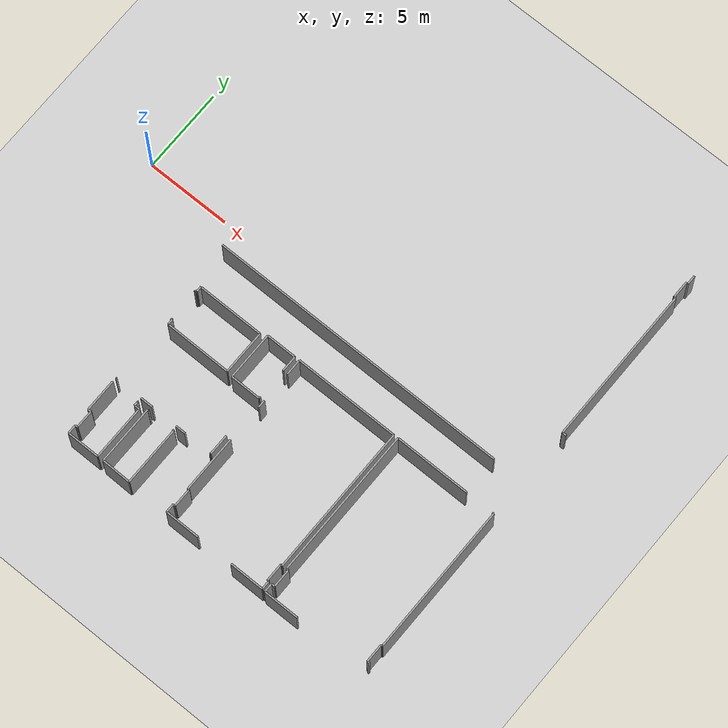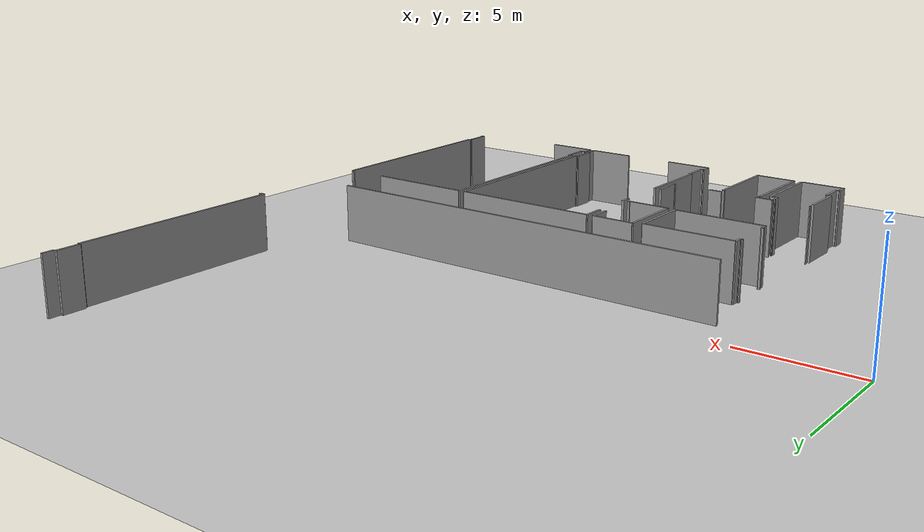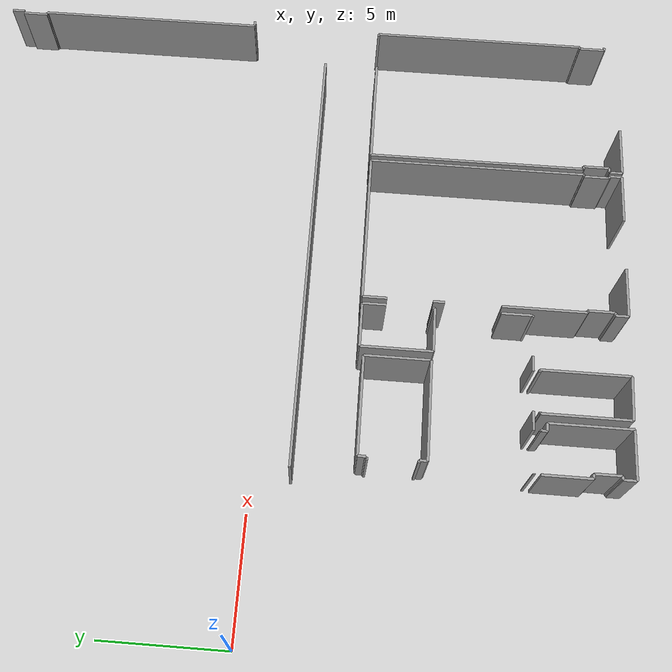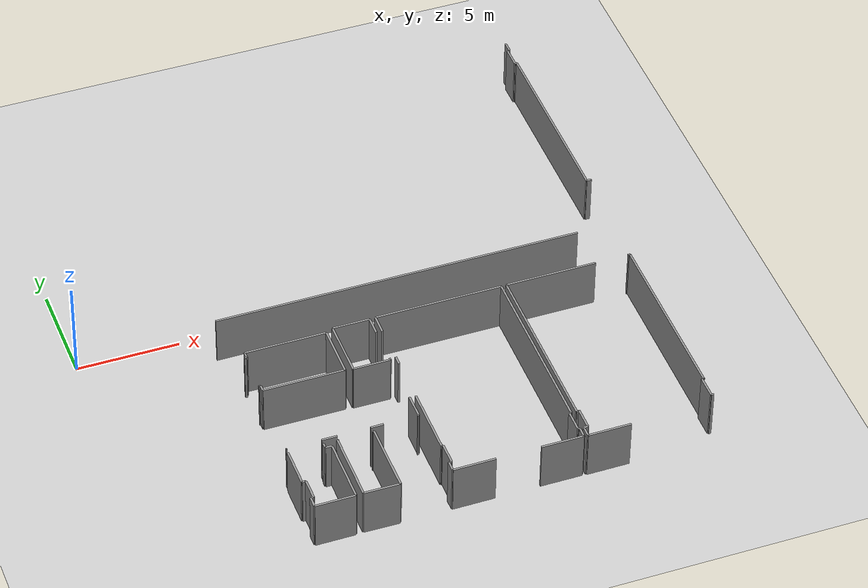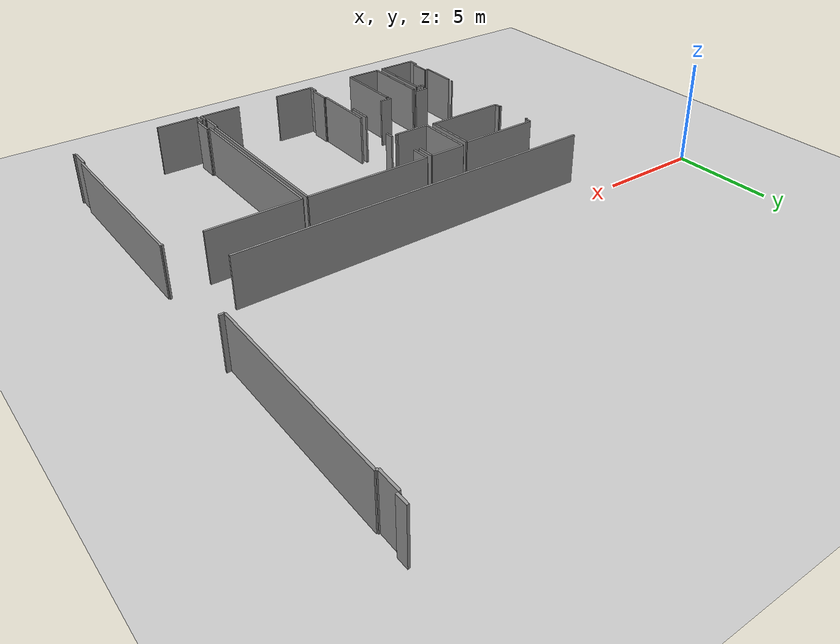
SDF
<sdf version="1.6">
 <world name="default">
  <model name="ground_plane">
   <static>1</static>
   <link name="link">
    <collision name="collision">
     <geometry><plane><normal>0 0 1</normal><size>100 100</size></plane></geometry>
     <surface><friction><ode><mu>100</mu><mu2>50</mu2></ode></friction></surface>
    </collision>
    <visual name="visual">
     <cast_shadows>0</cast_shadows>
     <geometry><plane><normal>0 0 1</normal><size>100 100</size></plane></geometry>
     <material>
      <script><uri>file://media/materials/scripts/gazebo.material</uri><name>Gazebo/Grey</name></script>
     </material>
    </visual>
   </link>
  </model>
  <model name="0510040946_A-40">
   <static>1</static>
   <link name="Wall_151">
    <collision name="Wall_151_Collision">
     <geometry><box><size>0.525818500035 0.1 2.5</size></box></geometry>
     <pose>0.262909250017 0 1.25 0 0 0</pose>
    </collision>
    <visual name="Wall_151_Visual">
     <pose>0.262909250017 0 1.25 0 0 0</pose>
     <geometry><box><size>0.525818500035 0.1 2.5</size></box></geometry>
     <material>
      <script><uri>file://media/materials/scripts/gazebo.material</uri><name>Gazebo/Grey</name></script>
      <ambient>1 1 1 1</ambient>
     </material>
    </visual>
    <pose>84.4169514956 -0.0164873142799 0 0 0 -1.57079632679</pose>
   </link>
   <link name="Wall_153">
    <collision name="Wall_153_Collision">
     <geometry><box><size>1.03058396799 0.1 2.5</size></box></geometry>
     <pose>0.515291983995 0 1.25 0 0 0</pose>
    </collision>
    <visual name="Wall_153_Visual">
     <pose>0.515291983995 0 1.25 0 0 0</pose>
     <geometry><box><size>1.03058396799 0.1 2.5</size></box></geometry>
     <material>
      <script><uri>file://media/materials/scripts/gazebo.material</uri><name>Gazebo/Grey</name></script>
      <ambient>1 1 1 1</ambient>
     </material>
    </visual>
    <pose>84.3085156978 -0.542305814315 0 0 0 -1.57079632679</pose>
   </link>
   <link name="Wall_154">
    <collision name="Wall_154_Collision">
     <geometry><box><size>0.0975288052404 0.1 2.5</size></box></geometry>
     <pose>0.0487644026202 0 1.25 0 0 0</pose>
    </collision>
    <visual name="Wall_154_Visual">
     <pose>0.0487644026202 0 1.25 0 0 0</pose>
     <geometry><box><size>0.0975288052404 0.1 2.5</size></box></geometry>
     <material>
      <script><uri>file://media/materials/scripts/gazebo.material</uri><name>Gazebo/Grey</name></script>
      <ambient>1 1 1 1</ambient>
     </material>
    </visual>
    <pose>84.3085156978 -1.5728897823 0 0 0 0.0</pose>
   </link>
   <link name="Wall_155">
    <collision name="Wall_155_Collision">
     <geometry><box><size>9.25128569345 0.1 2.5</size></box></geometry>
     <pose>4.62564284673 0 1.25 0 0 0</pose>
    </collision>
    <visual name="Wall_155_Visual">
     <pose>4.62564284673 0 1.25 0 0 0</pose>
     <geometry><box><size>9.25128569345 0.1 2.5</size></box></geometry>
     <material>
      <script><uri>file://media/materials/scripts/gazebo.material</uri><name>Gazebo/Grey</name></script>
      <ambient>1 1 1 1</ambient>
     </material>
    </visual>
    <pose>84.4060445031 -1.5728897823 0 0 0 -1.57079632679</pose>
   </link>
   <link name="Wall_156">
    <collision name="Wall_156_Collision">
     <geometry><box><size>0.236022245192 0.1 2.5</size></box></geometry>
     <pose>0.118011122596 0 1.25 0 0 0</pose>
    </collision>
    <visual name="Wall_156_Visual">
     <pose>0.118011122596 0 1.25 0 0 0</pose>
     <geometry><box><size>0.236022245192 0.1 2.5</size></box></geometry>
     <material>
      <script><uri>file://media/materials/scripts/gazebo.material</uri><name>Gazebo/Grey</name></script>
      <ambient>1 1 1 1</ambient>
     </material>
    </visual>
    <pose>84.4060445031 -10.8241754758 0 0 0 0.0</pose>
   </link>
   <link name="Wall_164">
    <collision name="Wall_164_Collision">
     <geometry><box><size>17.9492317546 0.1 2.5</size></box></geometry>
     <pose>8.97461587728 0 1.25 0 0 0</pose>
    </collision>
    <visual name="Wall_164_Visual">
     <pose>8.97461587728 0 1.25 0 0 0</pose>
     <geometry><box><size>17.9492317546 0.1 2.5</size></box></geometry>
     <material>
      <script><uri>file://media/materials/scripts/gazebo.material</uri><name>Gazebo/Grey</name></script>
      <ambient>1 1 1 1</ambient>
     </material>
    </visual>
    <pose>82.6194537626 -14.1014730781 0 0 0 3.14159265359</pose>
   </link>
   <link name="Wall_182">
    <collision name="Wall_182_Collision">
     <geometry><box><size>1.21727109584 0.1 2.5</size></box></geometry>
     <pose>0.608635547918 0 1.25 0 0 0</pose>
    </collision>
    <visual name="Wall_182_Visual">
     <pose>0.608635547918 0 1.25 0 0 0</pose>
     <geometry><box><size>1.21727109584 0.1 2.5</size></box></geometry>
     <material>
      <script><uri>file://media/materials/scripts/gazebo.material</uri><name>Gazebo/Grey</name></script>
      <ambient>1 1 1 1</ambient>
     </material>
    </visual>
    <pose>71.3946365498 -21.76211342 0 0 0 -1.57079632679</pose>
   </link>
   <link name="Wall_183">
    <collision name="Wall_183_Collision">
     <geometry><box><size>0.0604957608578 0.1 2.5</size></box></geometry>
     <pose>0.0302478804289 0 1.25 0 0 0</pose>
    </collision>
    <visual name="Wall_183_Visual">
     <pose>0.0302478804289 0 1.25 0 0 0</pose>
     <geometry><box><size>0.0604957608578 0.1 2.5</size></box></geometry>
     <material>
      <script><uri>file://media/materials/scripts/gazebo.material</uri><name>Gazebo/Grey</name></script>
      <ambient>1 1 1 1</ambient>
     </material>
    </visual>
    <pose>71.3946365498 -22.9793845159 0 0 0 3.14159265359</pose>
   </link>
   <link name="Wall_184">
    <collision name="Wall_184_Collision">
     <geometry><box><size>0.614215869674 0.1 2.5</size></box></geometry>
     <pose>0.307107934837 0 1.25 0 0 0</pose>
    </collision>
    <visual name="Wall_184_Visual">
     <pose>0.307107934837 0 1.25 0 0 0</pose>
     <geometry><box><size>0.614215869674 0.1 2.5</size></box></geometry>
     <material>
      <script><uri>file://media/materials/scripts/gazebo.material</uri><name>Gazebo/Grey</name></script>
      <ambient>1 1 1 1</ambient>
     </material>
    </visual>
    <pose>69.7057014401 -22.9793845159 0 0 0 3.14159265359</pose>
   </link>
   <link name="Wall_185">
    <collision name="Wall_185_Collision">
     <geometry><box><size>0.74687533688 0.1 2.5</size></box></geometry>
     <pose>0.37343766844 0 1.25 0 0 0</pose>
    </collision>
    <visual name="Wall_185_Visual">
     <pose>0.37343766844 0 1.25 0 0 0</pose>
     <geometry><box><size>0.74687533688 0.1 2.5</size></box></geometry>
     <material>
      <script><uri>file://media/materials/scripts/gazebo.material</uri><name>Gazebo/Grey</name></script>
      <ambient>1 1 1 1</ambient>
     </material>
    </visual>
    <pose>67.5094643525 -22.9793845159 0 0 0 3.14159265359</pose>
   </link>
   <link name="Wall_186">
    <collision name="Wall_186_Collision">
     <geometry><box><size>0.0435011446001 0.1 2.5</size></box></geometry>
     <pose>0.0217505723 0 1.25 0 0 0</pose>
    </collision>
    <visual name="Wall_186_Visual">
     <pose>0.0217505723 0 1.25 0 0 0</pose>
     <geometry><box><size>0.0435011446001 0.1 2.5</size></box></geometry>
     <material>
      <script><uri>file://media/materials/scripts/gazebo.material</uri><name>Gazebo/Grey</name></script>
      <ambient>1 1 1 1</ambient>
     </material>
    </visual>
    <pose>65.1309790294 -22.9793845159 0 0 0 3.14159265359</pose>
   </link>
   <link name="Wall_194">
    <collision name="Wall_194_Collision">
     <geometry><box><size>0.308439602529 0.1 2.5</size></box></geometry>
     <pose>0.154219801264 0 1.25 0 0 0</pose>
    </collision>
    <visual name="Wall_194_Visual">
     <pose>0.154219801264 0 1.25 0 0 0</pose>
     <geometry><box><size>0.308439602529 0.1 2.5</size></box></geometry>
     <material>
      <script><uri>file://media/materials/scripts/gazebo.material</uri><name>Gazebo/Grey</name></script>
      <ambient>1 1 1 1</ambient>
     </material>
    </visual>
    <pose>65.2873548641 -19.1131093172 0 0 0 1.57079632679</pose>
   </link>
   <link name="Wall_195">
    <collision name="Wall_195_Collision">
     <geometry><box><size>0.0918216579897 0.1 2.5</size></box></geometry>
     <pose>0.0459108289948 0 1.25 0 0 0</pose>
    </collision>
    <visual name="Wall_195_Visual">
     <pose>0.0459108289948 0 1.25 0 0 0</pose>
     <geometry><box><size>0.0918216579897 0.1 2.5</size></box></geometry>
     <material>
      <script><uri>file://media/materials/scripts/gazebo.material</uri><name>Gazebo/Grey</name></script>
      <ambient>1 1 1 1</ambient>
     </material>
    </visual>
    <pose>65.2873548641 -18.8046697147 0 0 0 3.14159265359</pose>
   </link>
   <link name="Wall_196">
    <collision name="Wall_196_Collision">
     <geometry><box><size>0.08586085975 0.1 2.5</size></box></geometry>
     <pose>0.042930429875 0 1.25 0 0 0</pose>
    </collision>
    <visual name="Wall_196_Visual">
     <pose>0.042930429875 0 1.25 0 0 0</pose>
     <geometry><box><size>0.08586085975 0.1 2.5</size></box></geometry>
     <material>
      <script><uri>file://media/materials/scripts/gazebo.material</uri><name>Gazebo/Grey</name></script>
      <ambient>1 1 1 1</ambient>
     </material>
    </visual>
    <pose>65.1955332061 -16.9301889066 0 0 0 1.57079632679</pose>
   </link>
   <link name="Wall_197">
    <collision name="Wall_197_Collision">
     <geometry><box><size>0.0819292694217 0.1 2.5</size></box></geometry>
     <pose>0.0409646347109 0 1.25 0 0 0</pose>
    </collision>
    <visual name="Wall_197_Visual">
     <pose>0.0409646347109 0 1.25 0 0 0</pose>
     <geometry><box><size>0.0819292694217 0.1 2.5</size></box></geometry>
     <material>
      <script><uri>file://media/materials/scripts/gazebo.material</uri><name>Gazebo/Grey</name></script>
      <ambient>1 1 1 1</ambient>
     </material>
    </visual>
    <pose>65.1955332061 -16.8443280468 0 0 0 0.0</pose>
   </link>
   <link name="Wall_198">
    <collision name="Wall_198_Collision">
     <geometry><box><size>0.309961508462 0.1 2.5</size></box></geometry>
     <pose>0.154980754231 0 1.25 0 0 0</pose>
    </collision>
    <visual name="Wall_198_Visual">
     <pose>0.154980754231 0 1.25 0 0 0</pose>
     <geometry><box><size>0.309961508462 0.1 2.5</size></box></geometry>
     <material>
      <script><uri>file://media/materials/scripts/gazebo.material</uri><name>Gazebo/Grey</name></script>
      <ambient>1 1 1 1</ambient>
     </material>
    </visual>
    <pose>65.2774624755 -16.8443280468 0 0 0 1.57079632679</pose>
   </link>
   <link name="Wall_199">
    <collision name="Wall_199_Collision">
     <geometry><box><size>3.95670177619 0.1 2.5</size></box></geometry>
     <pose>1.9783508881 0 1.25 0 0 0</pose>
    </collision>
    <visual name="Wall_199_Visual">
     <pose>1.9783508881 0 1.25 0 0 0</pose>
     <geometry><box><size>3.95670177619 0.1 2.5</size></box></geometry>
     <material>
      <script><uri>file://media/materials/scripts/gazebo.material</uri><name>Gazebo/Grey</name></script>
      <ambient>1 1 1 1</ambient>
     </material>
    </visual>
    <pose>65.2774624755 -16.5343665384 0 0 0 0.0</pose>
   </link>
   <link name="Wall_200">
    <collision name="Wall_200_Collision">
     <geometry><box><size>2.59041072436 0.1 2.5</size></box></geometry>
     <pose>1.29520536218 0 1.25 0 0 0</pose>
    </collision>
    <visual name="Wall_200_Visual">
     <pose>1.29520536218 0 1.25 0 0 0</pose>
     <geometry><box><size>2.59041072436 0.1 2.5</size></box></geometry>
     <material>
      <script><uri>file://media/materials/scripts/gazebo.material</uri><name>Gazebo/Grey</name></script>
      <ambient>1 1 1 1</ambient>
     </material>
    </visual>
    <pose>69.2341642517 -16.5343665384 0 0 0 -1.57079632679</pose>
   </link>
   <link name="Wall_201">
    <collision name="Wall_201_Collision">
     <geometry><box><size>3.94682663455 0.1 2.5</size></box></geometry>
     <pose>1.97341331727 0 1.25 0 0 0</pose>
    </collision>
    <visual name="Wall_201_Visual">
     <pose>1.97341331727 0 1.25 0 0 0</pose>
     <geometry><box><size>3.94682663455 0.1 2.5</size></box></geometry>
     <material>
      <script><uri>file://media/materials/scripts/gazebo.material</uri><name>Gazebo/Grey</name></script>
      <ambient>1 1 1 1</ambient>
     </material>
    </visual>
    <pose>69.2341642517 -19.1247772627 0 0 0 3.138636364</pose>
   </link>
   <link name="Wall_226">
    <collision name="Wall_226_Collision">
     <geometry><box><size>0.522140560696 0.1 2.5</size></box></geometry>
     <pose>0.261070280348 0 1.25 0 0 0</pose>
    </collision>
    <visual name="Wall_226_Visual">
     <pose>0.261070280348 0 1.25 0 0 0</pose>
     <geometry><box><size>0.522140560696 0.1 2.5</size></box></geometry>
     <material>
      <script><uri>file://media/materials/scripts/gazebo.material</uri><name>Gazebo/Grey</name></script>
      <ambient>1 1 1 1</ambient>
     </material>
    </visual>
    <pose>65.1455639613 -26.7110978649 0 0 0 1.57079632679</pose>
   </link>
   <link name="Wall_227">
    <collision name="Wall_227_Collision">
     <geometry><box><size>0.137732486985 0.1 2.5</size></box></geometry>
     <pose>0.0688662434923 0 1.25 0 0 0</pose>
    </collision>
    <visual name="Wall_227_Visual">
     <pose>0.0688662434923 0 1.25 0 0 0</pose>
     <geometry><box><size>0.137732486985 0.1 2.5</size></box></geometry>
     <material>
      <script><uri>file://media/materials/scripts/gazebo.material</uri><name>Gazebo/Grey</name></script>
      <ambient>1 1 1 1</ambient>
     </material>
    </visual>
    <pose>65.1455639613 -26.1889573042 0 0 0 0.0</pose>
   </link>
   <link name="Wall_228">
    <collision name="Wall_228_Collision">
     <geometry><box><size>1.0441542959 0.1 2.5</size></box></geometry>
     <pose>0.522077147948 0 1.25 0 0 0</pose>
    </collision>
    <visual name="Wall_228_Visual">
     <pose>0.522077147948 0 1.25 0 0 0</pose>
     <geometry><box><size>1.0441542959 0.1 2.5</size></box></geometry>
     <material>
      <script><uri>file://media/materials/scripts/gazebo.material</uri><name>Gazebo/Grey</name></script>
      <ambient>1 1 1 1</ambient>
     </material>
    </visual>
    <pose>65.2832964483 -26.1889573042 0 0 0 1.57079632679</pose>
   </link>
   <link name="Wall_229">
    <collision name="Wall_229_Collision">
     <geometry><box><size>0.188462684769 0.1 2.5</size></box></geometry>
     <pose>0.0942313423844 0 1.25 0 0 0</pose>
    </collision>
    <visual name="Wall_229_Visual">
     <pose>0.0942313423844 0 1.25 0 0 0</pose>
     <geometry><box><size>0.188462684769 0.1 2.5</size></box></geometry>
     <material>
      <script><uri>file://media/materials/scripts/gazebo.material</uri><name>Gazebo/Grey</name></script>
      <ambient>1 1 1 1</ambient>
     </material>
    </visual>
    <pose>65.2832964483 -25.1448030083 0 0 0 3.14159265359</pose>
   </link>
   <link name="Wall_230">
    <collision name="Wall_230_Collision">
     <geometry><box><size>1.91430401339 0.1 2.5</size></box></geometry>
     <pose>0.957152006696 0 1.25 0 0 0</pose>
    </collision>
    <visual name="Wall_230_Visual">
     <pose>0.957152006696 0 1.25 0 0 0</pose>
     <geometry><box><size>1.91430401339 0.1 2.5</size></box></geometry>
     <material>
      <script><uri>file://media/materials/scripts/gazebo.material</uri><name>Gazebo/Grey</name></script>
      <ambient>1 1 1 1</ambient>
     </material>
    </visual>
    <pose>65.0948337635 -25.1448030083 0 0 0 1.57079632679</pose>
   </link>
   <link name="Wall_231">
    <collision name="Wall_231_Collision">
     <geometry><box><size>0.0362720914158 0.1 2.5</size></box></geometry>
     <pose>0.0181360457079 0 1.25 0 0 0</pose>
    </collision>
    <visual name="Wall_231_Visual">
     <pose>0.0181360457079 0 1.25 0 0 0</pose>
     <geometry><box><size>0.0362720914158 0.1 2.5</size></box></geometry>
     <material>
      <script><uri>file://media/materials/scripts/gazebo.material</uri><name>Gazebo/Grey</name></script>
      <ambient>1 1 1 1</ambient>
     </material>
    </visual>
    <pose>66.7335459774 -23.2304989949 0 0 0 0.0</pose>
   </link>
   <link name="Wall_232">
    <collision name="Wall_232_Collision">
     <geometry><box><size>0.253777814416 0.1 2.5</size></box></geometry>
     <pose>0.126888907208 0 1.25 0 0 0</pose>
    </collision>
    <visual name="Wall_232_Visual">
     <pose>0.126888907208 0 1.25 0 0 0</pose>
     <geometry><box><size>0.253777814416 0.1 2.5</size></box></geometry>
     <material>
      <script><uri>file://media/materials/scripts/gazebo.material</uri><name>Gazebo/Grey</name></script>
      <ambient>1 1 1 1</ambient>
     </material>
    </visual>
    <pose>66.7698180688 -23.2304989949 0 0 0 -1.57079632679</pose>
   </link>
   <link name="Wall_233">
    <collision name="Wall_233_Collision">
     <geometry><box><size>0.313512622307 0.1 2.5</size></box></geometry>
     <pose>0.156756311154 0 1.25 0 0 0</pose>
    </collision>
    <visual name="Wall_233_Visual">
     <pose>0.156756311154 0 1.25 0 0 0</pose>
     <geometry><box><size>0.313512622307 0.1 2.5</size></box></geometry>
     <material>
      <script><uri>file://media/materials/scripts/gazebo.material</uri><name>Gazebo/Grey</name></script>
      <ambient>1 1 1 1</ambient>
     </material>
    </visual>
    <pose>66.7698180688 -23.4842768093 0 0 0 0.0</pose>
   </link>
   <link name="Wall_234">
    <collision name="Wall_234_Collision">
     <geometry><box><size>3.22136755931 0.1 2.5</size></box></geometry>
     <pose>1.61068377965 0 1.25 0 0 0</pose>
    </collision>
    <visual name="Wall_234_Visual">
     <pose>1.61068377965 0 1.25 0 0 0</pose>
     <geometry><box><size>3.22136755931 0.1 2.5</size></box></geometry>
     <material>
      <script><uri>file://media/materials/scripts/gazebo.material</uri><name>Gazebo/Grey</name></script>
      <ambient>1 1 1 1</ambient>
     </material>
    </visual>
    <pose>67.0833306911 -23.4842768093 0 0 0 -1.57079632679</pose>
   </link>
   <link name="Wall_235">
    <collision name="Wall_235_Collision">
     <geometry><box><size>1.9377744038 0.1 2.5</size></box></geometry>
     <pose>0.968887201898 0 1.25 0 0 0</pose>
    </collision>
    <visual name="Wall_235_Visual">
     <pose>0.968887201898 0 1.25 0 0 0</pose>
     <geometry><box><size>1.9377744038 0.1 2.5</size></box></geometry>
     <material>
      <script><uri>file://media/materials/scripts/gazebo.material</uri><name>Gazebo/Grey</name></script>
      <ambient>1 1 1 1</ambient>
     </material>
    </visual>
    <pose>67.0833306911 -26.7056443686 0 0 0 -3.13877834071</pose>
   </link>
   <link name="Wall_236">
    <collision name="Wall_236_Collision">
     <geometry><box><size>3.4526972612 0.1 2.5</size></box></geometry>
     <pose>1.7263486306 0 1.25 0 0 0</pose>
    </collision>
    <visual name="Wall_236_Visual">
     <pose>1.7263486306 0 1.25 0 0 0</pose>
     <geometry><box><size>3.4526972612 0.1 2.5</size></box></geometry>
     <material>
      <script><uri>file://media/materials/scripts/gazebo.material</uri><name>Gazebo/Grey</name></script>
      <ambient>1 1 1 1</ambient>
     </material>
    </visual>
    <pose>67.4301984185 -26.6858595915 0 0 0 1.57079632679</pose>
   </link>
   <link name="Wall_237">
    <collision name="Wall_237_Collision">
     <geometry><box><size>0.0691198944812 0.1 2.5</size></box></geometry>
     <pose>0.0345599472406 0 1.25 0 0 0</pose>
    </collision>
    <visual name="Wall_237_Visual">
     <pose>0.0345599472406 0 1.25 0 0 0</pose>
     <geometry><box><size>0.0691198944812 0.1 2.5</size></box></geometry>
     <material>
      <script><uri>file://media/materials/scripts/gazebo.material</uri><name>Gazebo/Grey</name></script>
      <ambient>1 1 1 1</ambient>
     </material>
    </visual>
    <pose>67.4301984185 -23.2331623303 0 0 0 0.0</pose>
   </link>
   <link name="Wall_238">
    <collision name="Wall_238_Collision">
     <geometry><box><size>0.0882705441448 0.1 2.5</size></box></geometry>
     <pose>0.0441352720724 0 1.25 0 0 0</pose>
    </collision>
    <visual name="Wall_238_Visual">
     <pose>0.0441352720724 0 1.25 0 0 0</pose>
     <geometry><box><size>0.0882705441448 0.1 2.5</size></box></geometry>
     <material>
      <script><uri>file://media/materials/scripts/gazebo.material</uri><name>Gazebo/Grey</name></script>
      <ambient>1 1 1 1</ambient>
     </material>
    </visual>
    <pose>69.0791834975 -23.2331623303 0 0 0 0.0</pose>
   </link>
   <link name="Wall_239">
    <collision name="Wall_239_Collision">
     <geometry><box><size>3.47463807175 0.1 2.5</size></box></geometry>
     <pose>1.73731903587 0 1.25 0 0 0</pose>
    </collision>
    <visual name="Wall_239_Visual">
     <pose>1.73731903587 0 1.25 0 0 0</pose>
     <geometry><box><size>3.47463807175 0.1 2.5</size></box></geometry>
     <material>
      <script><uri>file://media/materials/scripts/gazebo.material</uri><name>Gazebo/Grey</name></script>
      <ambient>1 1 1 1</ambient>
     </material>
    </visual>
    <pose>69.1674540416 -23.2331623303 0 0 0 -1.57079632679</pose>
   </link>
   <link name="Wall_240">
    <collision name="Wall_240_Collision">
     <geometry><box><size>1.73739416922 0.1 2.5</size></box></geometry>
     <pose>0.868697084611 0 1.25 0 0 0</pose>
    </collision>
    <visual name="Wall_240_Visual">
     <pose>0.868697084611 0 1.25 0 0 0</pose>
     <geometry><box><size>1.73739416922 0.1 2.5</size></box></geometry>
     <material>
      <script><uri>file://media/materials/scripts/gazebo.material</uri><name>Gazebo/Grey</name></script>
      <ambient>1 1 1 1</ambient>
     </material>
    </visual>
    <pose>69.1674540416 -26.707800402 0 0 0 3.12896374406</pose>
   </link>
   <link name="Wall_241">
    <collision name="Wall_241_Collision">
     <geometry><box><size>0.507555628833 0.1 2.5</size></box></geometry>
     <pose>0.253777814416 0 1.25 0 0 0</pose>
    </collision>
    <visual name="Wall_241_Visual">
     <pose>0.253777814416 0 1.25 0 0 0</pose>
     <geometry><box><size>0.507555628833 0.1 2.5</size></box></geometry>
     <material>
      <script><uri>file://media/materials/scripts/gazebo.material</uri><name>Gazebo/Grey</name></script>
      <ambient>1 1 1 1</ambient>
     </material>
    </visual>
    <pose>71.642707217 -26.6892838798 0 0 0 1.57079632679</pose>
   </link>
   <link name="Wall_242">
    <collision name="Wall_242_Collision">
     <geometry><box><size>0.123274380616 0.1 2.5</size></box></geometry>
     <pose>0.061637190308 0 1.25 0 0 0</pose>
    </collision>
    <visual name="Wall_242_Visual">
     <pose>0.061637190308 0 1.25 0 0 0</pose>
     <geometry><box><size>0.123274380616 0.1 2.5</size></box></geometry>
     <material>
      <script><uri>file://media/materials/scripts/gazebo.material</uri><name>Gazebo/Grey</name></script>
      <ambient>1 1 1 1</ambient>
     </material>
    </visual>
    <pose>71.642707217 -26.181728251 0 0 0 0.0</pose>
   </link>
   <link name="Wall_243">
    <collision name="Wall_243_Collision">
     <geometry><box><size>1.07319733413 0.1 2.5</size></box></geometry>
     <pose>0.536598667064 0 1.25 0 0 0</pose>
    </collision>
    <visual name="Wall_243_Visual">
     <pose>0.536598667064 0 1.25 0 0 0</pose>
     <geometry><box><size>1.07319733413 0.1 2.5</size></box></geometry>
     <material>
      <script><uri>file://media/materials/scripts/gazebo.material</uri><name>Gazebo/Grey</name></script>
      <ambient>1 1 1 1</ambient>
     </material>
    </visual>
    <pose>71.7659815976 -26.181728251 0 0 0 1.57079632679</pose>
   </link>
   <link name="Wall_244">
    <collision name="Wall_244_Collision">
     <geometry><box><size>0.0797732360159 0.1 2.5</size></box></geometry>
     <pose>0.039886618008 0 1.25 0 0 0</pose>
    </collision>
    <visual name="Wall_244_Visual">
     <pose>0.039886618008 0 1.25 0 0 0</pose>
     <geometry><box><size>0.0797732360159 0.1 2.5</size></box></geometry>
     <material>
      <script><uri>file://media/materials/scripts/gazebo.material</uri><name>Gazebo/Grey</name></script>
      <ambient>1 1 1 1</ambient>
     </material>
    </visual>
    <pose>71.7659815976 -25.1085309169 0 0 0 3.14159265359</pose>
   </link>
   <link name="Wall_245">
    <collision name="Wall_245_Collision">
     <geometry><box><size>3.3268863707 0.1 2.5</size></box></geometry>
     <pose>1.66344318535 0 1.25 0 0 0</pose>
    </collision>
    <visual name="Wall_245_Visual">
     <pose>1.66344318535 0 1.25 0 0 0</pose>
     <geometry><box><size>3.3268863707 0.1 2.5</size></box></geometry>
     <material>
      <script><uri>file://media/materials/scripts/gazebo.material</uri><name>Gazebo/Grey</name></script>
      <ambient>1 1 1 1</ambient>
     </material>
    </visual>
    <pose>71.6862083616 -25.1085309169 0 0 0 1.57079632679</pose>
   </link>
   <link name="Wall_246">
    <collision name="Wall_246_Collision">
     <geometry><box><size>0.456825431048 0.1 2.5</size></box></geometry>
     <pose>0.228412715524 0 1.25 0 0 0</pose>
    </collision>
    <visual name="Wall_246_Visual">
     <pose>0.228412715524 0 1.25 0 0 0</pose>
     <geometry><box><size>0.456825431048 0.1 2.5</size></box></geometry>
     <material>
      <script><uri>file://media/materials/scripts/gazebo.material</uri><name>Gazebo/Grey</name></script>
      <ambient>1 1 1 1</ambient>
     </material>
    </visual>
    <pose>71.6862083616 -19.5685396678 0 0 0 1.57079632679</pose>
   </link>
   <link name="Wall_247">
    <collision name="Wall_247_Collision">
     <geometry><box><size>0.971610113065 0.1 2.5</size></box></geometry>
     <pose>0.485805056532 0 1.25 0 0 0</pose>
    </collision>
    <visual name="Wall_247_Visual">
     <pose>0.485805056532 0 1.25 0 0 0</pose>
     <geometry><box><size>0.971610113065 0.1 2.5</size></box></geometry>
     <material>
      <script><uri>file://media/materials/scripts/gazebo.material</uri><name>Gazebo/Grey</name></script>
      <ambient>1 1 1 1</ambient>
     </material>
    </visual>
    <pose>71.6862083616 -17.3133287253 0 0 0 1.57079632679</pose>
   </link>
   <link name="Wall_248">
    <collision name="Wall_248_Collision">
     <geometry><box><size>6.22205875825 0.1 2.5</size></box></geometry>
     <pose>3.11102937913 0 1.25 0 0 0</pose>
    </collision>
    <visual name="Wall_248_Visual">
     <pose>3.11102937913 0 1.25 0 0 0</pose>
     <geometry><box><size>6.22205875825 0.1 2.5</size></box></geometry>
     <material>
      <script><uri>file://media/materials/scripts/gazebo.material</uri><name>Gazebo/Grey</name></script>
      <ambient>1 1 1 1</ambient>
     </material>
    </visual>
    <pose>71.6862083616 -16.3417186123 0 0 0 0.0</pose>
   </link>
   <link name="Wall_249">
    <collision name="Wall_249_Collision">
     <geometry><box><size>8.7921774035 0.1 2.5</size></box></geometry>
     <pose>4.39608870175 0 1.25 0 0 0</pose>
    </collision>
    <visual name="Wall_249_Visual">
     <pose>4.39608870175 0 1.25 0 0 0</pose>
     <geometry><box><size>8.7921774035 0.1 2.5</size></box></geometry>
     <material>
      <script><uri>file://media/materials/scripts/gazebo.material</uri><name>Gazebo/Grey</name></script>
      <ambient>1 1 1 1</ambient>
     </material>
    </visual>
    <pose>77.9082671199 -16.3417186123 0 0 0 -1.57079632679</pose>
   </link>
   <link name="Wall_250">
    <collision name="Wall_250_Collision">
     <geometry><box><size>0.087509591178 0.1 2.5</size></box></geometry>
     <pose>0.043754795589 0 1.25 0 0 0</pose>
    </collision>
    <visual name="Wall_250_Visual">
     <pose>0.043754795589 0 1.25 0 0 0</pose>
     <geometry><box><size>0.087509591178 0.1 2.5</size></box></geometry>
     <material>
      <script><uri>file://media/materials/scripts/gazebo.material</uri><name>Gazebo/Grey</name></script>
      <ambient>1 1 1 1</ambient>
     </material>
    </visual>
    <pose>77.9082671199 -25.1338960158 0 0 0 3.14159265359</pose>
   </link>
   <link name="Wall_251">
    <collision name="Wall_251_Collision">
     <geometry><box><size>1.04111048403 0.1 2.5</size></box></geometry>
     <pose>0.520555242015 0 1.25 0 0 0</pose>
    </collision>
    <visual name="Wall_251_Visual">
     <pose>0.520555242015 0 1.25 0 0 0</pose>
     <geometry><box><size>1.04111048403 0.1 2.5</size></box></geometry>
     <material>
      <script><uri>file://media/materials/scripts/gazebo.material</uri><name>Gazebo/Grey</name></script>
      <ambient>1 1 1 1</ambient>
     </material>
    </visual>
    <pose>77.8207575287 -25.1338960158 0 0 0 -1.57079632679</pose>
   </link>
   <link name="Wall_252">
    <collision name="Wall_252_Collision">
     <geometry><box><size>0.0819292694217 0.1 2.5</size></box></geometry>
     <pose>0.0409646347109 0 1.25 0 0 0</pose>
    </collision>
    <visual name="Wall_252_Visual">
     <pose>0.0409646347109 0 1.25 0 0 0</pose>
     <geometry><box><size>0.0819292694217 0.1 2.5</size></box></geometry>
     <material>
      <script><uri>file://media/materials/scripts/gazebo.material</uri><name>Gazebo/Grey</name></script>
      <ambient>1 1 1 1</ambient>
     </material>
    </visual>
    <pose>77.8207575287 -26.1750064998 0 0 0 0.0</pose>
   </link>
   <link name="Wall_253">
    <collision name="Wall_253_Collision">
     <geometry><box><size>0.505399595427 0.1 2.5</size></box></geometry>
     <pose>0.252699797713 0 1.25 0 0 0</pose>
    </collision>
    <visual name="Wall_253_Visual">
     <pose>0.252699797713 0 1.25 0 0 0</pose>
     <geometry><box><size>0.505399595427 0.1 2.5</size></box></geometry>
     <material>
      <script><uri>file://media/materials/scripts/gazebo.material</uri><name>Gazebo/Grey</name></script>
      <ambient>1 1 1 1</ambient>
     </material>
    </visual>
    <pose>77.9026867981 -26.1750064998 0 0 0 -1.57079632679</pose>
   </link>
   <link name="Wall_254">
    <collision name="Wall_254_Collision">
     <geometry><box><size>2.04062220588 0.1 2.5</size></box></geometry>
     <pose>1.02031110294 0 1.25 0 0 0</pose>
    </collision>
    <visual name="Wall_254_Visual">
     <pose>1.02031110294 0 1.25 0 0 0</pose>
     <geometry><box><size>2.04062220588 0.1 2.5</size></box></geometry>
     <material>
      <script><uri>file://media/materials/scripts/gazebo.material</uri><name>Gazebo/Grey</name></script>
      <ambient>1 1 1 1</ambient>
     </material>
    </visual>
    <pose>77.9026867981 -26.6804060952 0 0 0 3.14159265359</pose>
   </link>
   <link name="Wall_255">
    <collision name="Wall_255_Collision">
     <geometry><box><size>2.0521825287 0.1 2.5</size></box></geometry>
     <pose>1.02609126435 0 1.25 0 0 0</pose>
    </collision>
    <visual name="Wall_255_Visual">
     <pose>1.02609126435 0 1.25 0 0 0</pose>
     <geometry><box><size>2.0521825287 0.1 2.5</size></box></geometry>
     <material>
      <script><uri>file://media/materials/scripts/gazebo.material</uri><name>Gazebo/Grey</name></script>
      <ambient>1 1 1 1</ambient>
     </material>
    </visual>
    <pose>73.6948705429 -26.6804060952 0 0 0 -3.13726661915</pose>
   </link>
   <link name="Wall_256">
    <collision name="Wall_256_Collision">
     <geometry><box><size>2.82871582846 0.1 2.5</size></box></geometry>
     <pose>1.41435791423 0 1.25 0 0 0</pose>
    </collision>
    <visual name="Wall_256_Visual">
     <pose>1.41435791423 0 1.25 0 0 0</pose>
     <geometry><box><size>2.82871582846 0.1 2.5</size></box></geometry>
     <material>
      <script><uri>file://media/materials/scripts/gazebo.material</uri><name>Gazebo/Grey</name></script>
      <ambient>1 1 1 1</ambient>
     </material>
    </visual>
    <pose>69.5962510384 -19.1845120706 0 0 0 1.57079632679</pose>
   </link>
   <link name="Wall_257">
    <collision name="Wall_257_Collision">
     <geometry><box><size>1.80358535673 0.1 2.5</size></box></geometry>
     <pose>0.901792678364 0 1.25 0 0 0</pose>
    </collision>
    <visual name="Wall_257_Visual">
     <pose>0.901792678364 0 1.25 0 0 0</pose>
     <geometry><box><size>1.80358535673 0.1 2.5</size></box></geometry>
     <material>
      <script><uri>file://media/materials/scripts/gazebo.material</uri><name>Gazebo/Grey</name></script>
      <ambient>1 1 1 1</ambient>
     </material>
    </visual>
    <pose>69.5962510384 -16.3557962422 0 0 0 0.0</pose>
   </link>
   <link name="Wall_258">
    <collision name="Wall_258_Collision">
     <geometry><box><size>0.937620880549 0.1 2.5</size></box></geometry>
     <pose>0.468810440275 0 1.25 0 0 0</pose>
    </collision>
    <visual name="Wall_258_Visual">
     <pose>0.468810440275 0 1.25 0 0 0</pose>
     <geometry><box><size>0.937620880549 0.1 2.5</size></box></geometry>
     <material>
      <script><uri>file://media/materials/scripts/gazebo.material</uri><name>Gazebo/Grey</name></script>
      <ambient>1 1 1 1</ambient>
     </material>
    </visual>
    <pose>71.3998363951 -16.3557962422 0 0 0 -1.57079632679</pose>
   </link>
   <link name="Wall_259">
    <collision name="Wall_259_Collision">
     <geometry><box><size>0.108816274247 0.1 2.5</size></box></geometry>
     <pose>0.0544081371237 0 1.25 0 0 0</pose>
    </collision>
    <visual name="Wall_259_Visual">
     <pose>0.0544081371237 0 1.25 0 0 0</pose>
     <geometry><box><size>0.108816274247 0.1 2.5</size></box></geometry>
     <material>
      <script><uri>file://media/materials/scripts/gazebo.material</uri><name>Gazebo/Grey</name></script>
      <ambient>1 1 1 1</ambient>
     </material>
    </visual>
    <pose>71.3998363951 -19.0826711986 0 0 0 -1.57079632679</pose>
   </link>
   <link name="Wall_260">
    <collision name="Wall_260_Collision">
     <geometry><box><size>1.80359884543 0.1 2.5</size></box></geometry>
     <pose>0.901799422716 0 1.25 0 0 0</pose>
    </collision>
    <visual name="Wall_260_Visual">
     <pose>0.901799422716 0 1.25 0 0 0</pose>
     <geometry><box><size>1.80359884543 0.1 2.5</size></box></geometry>
     <material>
      <script><uri>file://media/materials/scripts/gazebo.material</uri><name>Gazebo/Grey</name></script>
      <ambient>1 1 1 1</ambient>
     </material>
    </visual>
    <pose>71.3998363951 -19.1914874728 0 0 0 3.13772515301</pose>
   </link>
   <link name="Wall_261">
    <collision name="Wall_261_Collision">
     <geometry><box><size>0.518335795862 0.1 2.5</size></box></geometry>
     <pose>0.259167897931 0 1.25 0 0 0</pose>
    </collision>
    <visual name="Wall_261_Visual">
     <pose>0.259167897931 0 1.25 0 0 0</pose>
     <geometry><box><size>0.518335795862 0.1 2.5</size></box></geometry>
     <material>
      <script><uri>file://media/materials/scripts/gazebo.material</uri><name>Gazebo/Grey</name></script>
      <ambient>1 1 1 1</ambient>
     </material>
    </visual>
    <pose>78.0945737712 -26.7033615097 0 0 0 1.57079632679</pose>
   </link>
   <link name="Wall_262">
    <collision name="Wall_262_Collision">
     <geometry><box><size>0.198481898831 0.1 2.5</size></box></geometry>
     <pose>0.0992409494156 0 1.25 0 0 0</pose>
    </collision>
    <visual name="Wall_262_Visual">
     <pose>0.0992409494156 0 1.25 0 0 0</pose>
     <geometry><box><size>0.198481898831 0.1 2.5</size></box></geometry>
     <material>
      <script><uri>file://media/materials/scripts/gazebo.material</uri><name>Gazebo/Grey</name></script>
      <ambient>1 1 1 1</ambient>
     </material>
    </visual>
    <pose>78.0945737712 -26.1850257139 0 0 0 0.0</pose>
   </link>
   <link name="Wall_263">
    <collision name="Wall_263_Collision">
     <geometry><box><size>1.06203669062 0.1 2.5</size></box></geometry>
     <pose>0.531018345308 0 1.25 0 0 0</pose>
    </collision>
    <visual name="Wall_263_Visual">
     <pose>0.531018345308 0 1.25 0 0 0</pose>
     <geometry><box><size>1.06203669062 0.1 2.5</size></box></geometry>
     <material>
      <script><uri>file://media/materials/scripts/gazebo.material</uri><name>Gazebo/Grey</name></script>
      <ambient>1 1 1 1</ambient>
     </material>
    </visual>
    <pose>78.2930556701 -26.1850257139 0 0 0 1.57079632679</pose>
   </link>
   <link name="Wall_264">
    <collision name="Wall_264_Collision">
     <geometry><box><size>0.124162159077 0.1 2.5</size></box></geometry>
     <pose>0.0620810795386 0 1.25 0 0 0</pose>
    </collision>
    <visual name="Wall_264_Visual">
     <pose>0.0620810795386 0 1.25 0 0 0</pose>
     <geometry><box><size>0.124162159077 0.1 2.5</size></box></geometry>
     <material>
      <script><uri>file://media/materials/scripts/gazebo.material</uri><name>Gazebo/Grey</name></script>
      <ambient>1 1 1 1</ambient>
     </material>
    </visual>
    <pose>78.2930556701 -25.1229890233 0 0 0 3.14159265359</pose>
   </link>
   <link name="Wall_265">
    <collision name="Wall_265_Collision">
     <geometry><box><size>8.79572851735 0.1 2.5</size></box></geometry>
     <pose>4.39786425867 0 1.25 0 0 0</pose>
    </collision>
    <visual name="Wall_265_Visual">
     <pose>4.39786425867 0 1.25 0 0 0</pose>
     <geometry><box><size>8.79572851735 0.1 2.5</size></box></geometry>
     <material>
      <script><uri>file://media/materials/scripts/gazebo.material</uri><name>Gazebo/Grey</name></script>
      <ambient>1 1 1 1</ambient>
     </material>
    </visual>
    <pose>78.168893511 -25.1229890233 0 0 0 1.57079632679</pose>
   </link>
   <link name="Wall_266">
    <collision name="Wall_266_Collision">
     <geometry><box><size>4.46679391491 0.1 2.5</size></box></geometry>
     <pose>2.23339695746 0 1.25 0 0 0</pose>
    </collision>
    <visual name="Wall_266_Visual">
     <pose>2.23339695746 0 1.25 0 0 0</pose>
     <geometry><box><size>4.46679391491 0.1 2.5</size></box></geometry>
     <material>
      <script><uri>file://media/materials/scripts/gazebo.material</uri><name>Gazebo/Grey</name></script>
      <ambient>1 1 1 1</ambient>
     </material>
    </visual>
    <pose>78.168893511 -16.3272605059 0 0 0 0.0</pose>
   </link>
   <link name="Wall_267">
    <collision name="Wall_267_Collision">
     <geometry><box><size>0.0887778461226 0.1 2.5</size></box></geometry>
     <pose>0.0443889230613 0 1.25 0 0 0</pose>
    </collision>
    <visual name="Wall_267_Visual">
     <pose>0.0443889230613 0 1.25 0 0 0</pose>
     <geometry><box><size>0.0887778461226 0.1 2.5</size></box></geometry>
     <material>
      <script><uri>file://media/materials/scripts/gazebo.material</uri><name>Gazebo/Grey</name></script>
      <ambient>1 1 1 1</ambient>
     </material>
    </visual>
    <pose>84.2935502895 -16.3272605059 0 0 0 0.0</pose>
   </link>
   <link name="Wall_268">
    <collision name="Wall_268_Collision">
     <geometry><box><size>8.79572851735 0.1 2.5</size></box></geometry>
     <pose>4.39786425867 0 1.25 0 0 0</pose>
    </collision>
    <visual name="Wall_268_Visual">
     <pose>4.39786425867 0 1.25 0 0 0</pose>
     <geometry><box><size>8.79572851735 0.1 2.5</size></box></geometry>
     <material>
      <script><uri>file://media/materials/scripts/gazebo.material</uri><name>Gazebo/Grey</name></script>
      <ambient>1 1 1 1</ambient>
     </material>
    </visual>
    <pose>84.3823281356 -16.3272605059 0 0 0 -1.57079632679</pose>
   </link>
   <link name="Wall_269">
    <collision name="Wall_269_Collision">
     <geometry><box><size>0.086114510739 0.1 2.5</size></box></geometry>
     <pose>0.0430572553695 0 1.25 0 0 0</pose>
    </collision>
    <visual name="Wall_269_Visual">
     <pose>0.0430572553695 0 1.25 0 0 0</pose>
     <geometry><box><size>0.086114510739 0.1 2.5</size></box></geometry>
     <material>
      <script><uri>file://media/materials/scripts/gazebo.material</uri><name>Gazebo/Grey</name></script>
      <ambient>1 1 1 1</ambient>
     </material>
    </visual>
    <pose>84.3823281356 -25.1229890233 0 0 0 3.14159265359</pose>
   </link>
   <link name="Wall_270">
    <collision name="Wall_270_Collision">
     <geometry><box><size>1.05873922776 0.1 2.5</size></box></geometry>
     <pose>0.52936961388 0 1.25 0 0 0</pose>
    </collision>
    <visual name="Wall_270_Visual">
     <pose>0.52936961388 0 1.25 0 0 0</pose>
     <geometry><box><size>1.05873922776 0.1 2.5</size></box></geometry>
     <material>
      <script><uri>file://media/materials/scripts/gazebo.material</uri><name>Gazebo/Grey</name></script>
      <ambient>1 1 1 1</ambient>
     </material>
    </visual>
    <pose>84.2962136249 -25.1229890233 0 0 0 -1.57079632679</pose>
   </link>
   <link name="Wall_271">
    <collision name="Wall_271_Collision">
     <geometry><box><size>0.123274380616 0.1 2.5</size></box></geometry>
     <pose>0.061637190308 0 1.25 0 0 0</pose>
    </collision>
    <visual name="Wall_271_Visual">
     <pose>0.061637190308 0 1.25 0 0 0</pose>
     <geometry><box><size>0.123274380616 0.1 2.5</size></box></geometry>
     <material>
      <script><uri>file://media/materials/scripts/gazebo.material</uri><name>Gazebo/Grey</name></script>
      <ambient>1 1 1 1</ambient>
     </material>
    </visual>
    <pose>84.2962136249 -26.181728251 0 0 0 0.0</pose>
   </link>
   <link name="Wall_274">
    <collision name="Wall_274_Collision">
     <geometry><box><size>2.09010354569 0.1 2.5</size></box></geometry>
     <pose>1.04505177285 0 1.25 0 0 0</pose>
    </collision>
    <visual name="Wall_274_Visual">
     <pose>1.04505177285 0 1.25 0 0 0</pose>
     <geometry><box><size>2.09010354569 0.1 2.5</size></box></geometry>
     <material>
      <script><uri>file://media/materials/scripts/gazebo.material</uri><name>Gazebo/Grey</name></script>
      <ambient>1 1 1 1</ambient>
     </material>
    </visual>
    <pose>80.1846579199 -26.6943568996 0 0 0 -3.13728442782</pose>
   </link>
   <pose>-58.35 12.510471347 0 0 0 0</pose>
  </model>
 </world>
</sdf>
